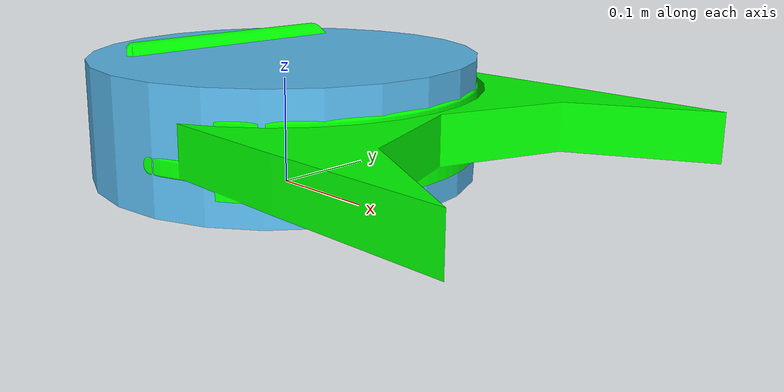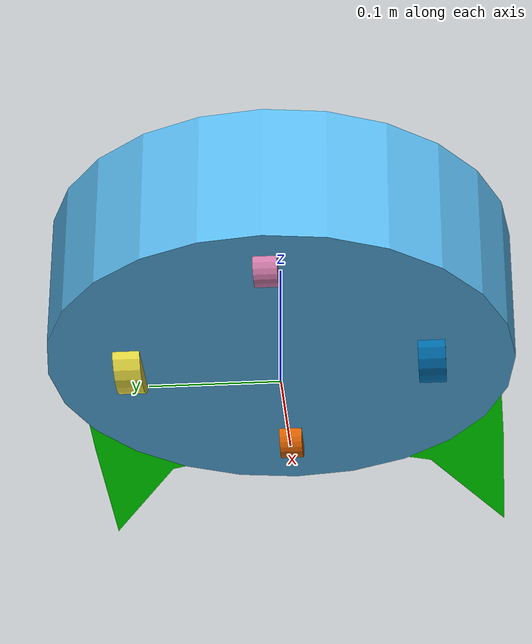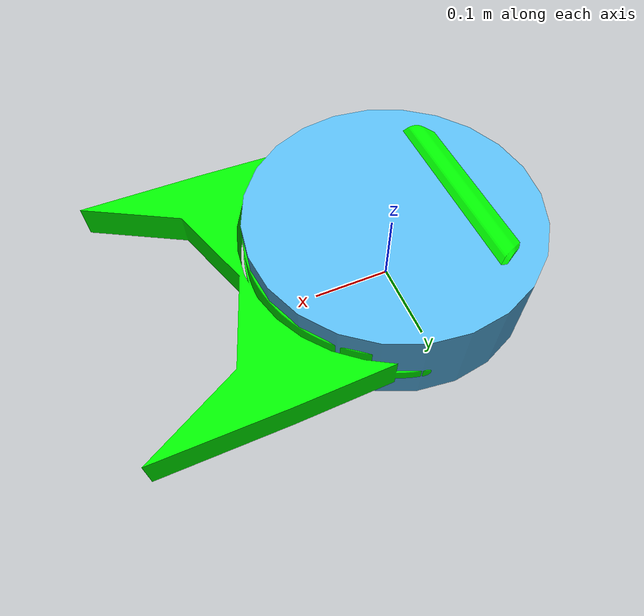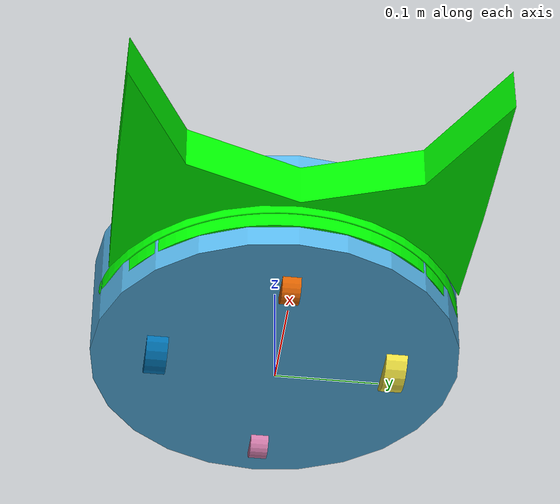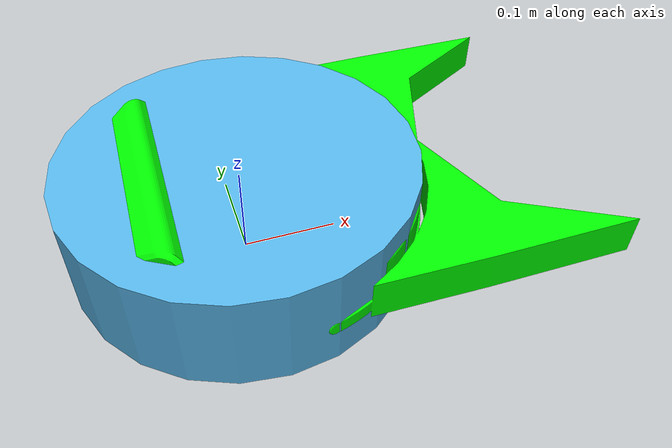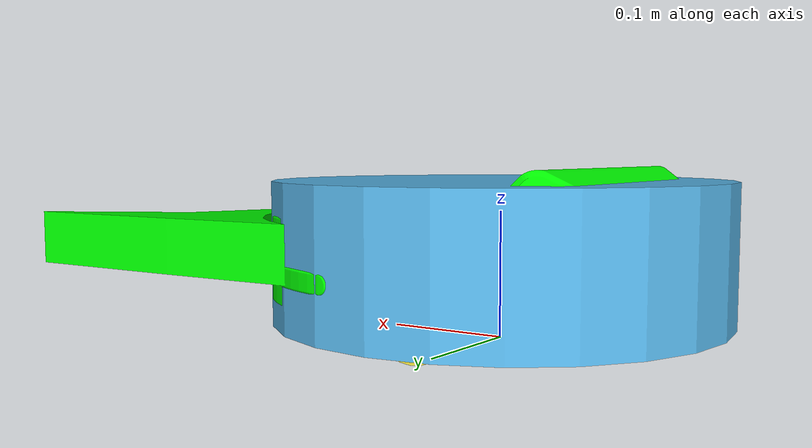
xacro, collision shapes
<?xml version="1.0"?>
<robot name="kobuki_standalone"
       xmlns:sensor="http://playerstage.sourceforge.net/gazebo/xmlschema/#sensor"
       xmlns:controller="http://playerstage.sourceforge.net/gazebo/xmlschema/#controller"
       xmlns:interface="http://playerstage.sourceforge.net/gazebo/xmlschema/#interface"
       xmlns:xacro="http://ros.org/wiki/xacro">

  <!-- Defines the kobuki component tag. -->
  <xacro:include filename="$(find learning_kobuki_description)/urdf/kobuki.urdf.xacro" />
  <kobuki/>
</robot>

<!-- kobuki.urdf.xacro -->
<robot name="kobuki" xmlns:xacro="http://ros.org/wiki/xacro">
  <xacro:include filename="$(find learning_kobuki_description)/urdf/common_properties.urdf.xacro"/>
  <xacro:include filename="$(find learning_kobuki_description)/urdf/kobuki_gazebo.urdf.xacro"/>

  <!-- Kobuki -->
  <xacro:macro name="kobuki">
    <link name="base_footprint"/>
    <joint name="base_joint" type="fixed">
      <origin xyz="0 0 0.0102" rpy="0 0 0" />
      <parent link="base_footprint"/>
      <child link="base_link" />
    </joint>
    <link name="base_link">
      <visual>
        <geometry>
          <!-- new mesh -->
          <mesh filename="package://learning_kobuki_description/meshes/main_body.dae" />
        </geometry>
        <origin xyz="0.001 0 0.05199" rpy="0 0 0"/>
      </visual>
      <collision>
        <geometry>
          <cylinder length="0.10938" radius="0.178"/>
        </geometry>
        <origin xyz="0.0 0 0.05949" rpy="0 0 0"/>
      </collision>
      <inertial>
        <!-- COM experimentally determined -->
        <origin xyz="0.01 0 0"/>
        <mass value="2.4"/> <!-- 2.4/2.6 kg for small/big battery pack -->
        <inertia ixx="0.019995" ixy="0.0" ixz="0.0"
                 iyy="0.019995" iyz="0.0"
                 izz="0.03675" />
      </inertial>
    </link>

    <joint name="pusher_joint" type="fixed">
      <origin xyz="0 0 0.0102" rpy="0 0 0" />
      <parent link="base_link"/>
      <child link="pusher_link" />
    </joint>
    <link name="pusher_link">
      <visual>
        <geometry>
          <!-- new mesh -->
          <mesh filename="package://learning_kobuki_description/meshes/turtle_pusher.dae" />
        </geometry>
        <origin xyz="0.005 0 0.05199" rpy="0 0 0"/>
        <material name="neon_green">
          <color rgba="0 1 0 1"/>
        </material>
      </visual>
      <collision>
        <geometry>
          <!-- Custom collision mesh -->
          <mesh filename="package://learning_kobuki_description/meshes/turtle_pusher_collision.dae" />
        </geometry>
        <origin xyz="0.005 0 0.05199" rpy="0 0 0"/>
      </collision>
      <inertial>
        <!-- COM experimentally determined -->
        <origin xyz="0.015 0 0.05199"/>
        <mass value="0.0"/> <!-- 2.4/2.6 kg for small/big battery pack -->
        <inertia ixx="0.0" ixy="0.0" ixz="0.0"
                 iyy="0.0" iyz="0.0"
                 izz="0.0" />
      </inertial>
    </link>

    <joint name="wheel_left_joint" type="continuous">
      <parent link="base_link"/>
      <child link="wheel_left_link"/>
      <origin xyz="0.00 ${0.23/2} 0.0250" rpy="${-M_PI/2} 0 0"/>
      <axis xyz="0 0 1"/>
    </joint>
    <link name="wheel_left_link">
      <visual>
        <geometry>
          <mesh filename="package://learning_kobuki_description/meshes/wheel.dae"/>
        </geometry>
        <origin xyz="0 0 0" rpy="0 0 0"/>
      </visual>
      <collision>
        <geometry>
          <cylinder length="0.0206" radius="0.0352"/>
        </geometry>
        <origin rpy="0 0 0" xyz="0 0 0"/>
      </collision>
      <inertial>
        <mass value="0.01" />
        <origin xyz="0 0 0" />
        <inertia ixx="0.001" ixy="0.0" ixz="0.0"
                 iyy="0.001" iyz="0.0"
                 izz="0.001" />
      </inertial>
    </link>

    <joint name="wheel_right_joint" type="continuous">
      <parent link="base_link"/>
      <child link="wheel_right_link"/>
      <origin xyz="0.00 -${0.23/2} 0.0250" rpy="${-M_PI/2} 0 0"/>
      <axis xyz="0 0 1"/>
    </joint>
    <link name="wheel_right_link">
      <visual>
        <geometry>
          <mesh filename="package://learning_kobuki_description/meshes/wheel.dae"/>
        </geometry>
        <origin xyz="0 0 0" rpy="0 0 0"/>
      </visual>
      <collision>
        <geometry>
          <cylinder length="0.0206" radius="0.0350"/>
        </geometry>
        <origin rpy="0 0 0" xyz="0 0 0"/>
      </collision>
      <inertial>
        <mass value="0.01" />
        <origin xyz="0 0 0" />
        <inertia ixx="0.001" ixy="0.0" ixz="0.0"
                 iyy="0.001" iyz="0.0"
                 izz="0.001" />
      </inertial>
    </link>

    <joint name="caster_front_joint" type="fixed">
      <parent link="base_link"/>
      <child link="caster_front_link"/>
      <origin xyz="0.115 0.0 0.007" rpy="${-M_PI/2} 0 0"/>
    </joint>
    <link name="caster_front_link">
      <collision>
        <geometry>
          <cylinder length="0.0176" radius="0.017"/>
        </geometry>
        <origin rpy="0 0 0" xyz="0 0 0"/>
      </collision>
      <inertial>
        <mass value="0.01" />
        <origin xyz="0 0 0" />
        <inertia ixx="0.001" ixy="0.0" ixz="0.0"
                 iyy="0.001" iyz="0.0"
                 izz="0.001" />
      </inertial>
    </link>

    <joint name="caster_back_joint" type="fixed">
      <parent link="base_link"/>
      <child link="caster_back_link"/>
      <origin xyz="-0.135 0.0 0.009" rpy="${-M_PI/2} 0 0"/>
    </joint>
    <link name="caster_back_link">
      <collision>
        <geometry>
          <cylinder length="0.0176" radius="0.017"/>
        </geometry>
        <origin rpy="0 0 0" xyz="0 0 0"/>
      </collision>
      <inertial>
        <mass value="0.01" />
        <origin xyz="0 0 0" />
        <inertia ixx="0.001" ixy="0.0" ixz="0.0"
                 iyy="0.001" iyz="0.0"
                 izz="0.001" />
      </inertial>
    </link>

    <!-- Kobuki's sensors -->
    <joint name="gyro_joint" type="fixed">
      <axis xyz="0 1 0"/>
      <origin xyz="0.056 0.062 0.0202" rpy="0 0 0"/>
      <parent link="base_link"/>
      <child link="gyro_link"/>
    </joint>
    <link name="gyro_link">
      <inertial>
        <mass value="0.001"/>
        <origin xyz="0 0 0" rpy="0 0 0"/>
        <inertia ixx="0.0001" ixy="0" ixz="0"
                 iyy="0.000001" iyz="0"
                 izz="0.0001"/>
      </inertial>
    </link>

    <joint name="cliff_sensor_left_joint" type="fixed">
      <origin xyz="0.08734 0.13601 0.0214" rpy="0 ${M_PI/2} 0" />
      <parent link="base_link"/>
      <child link="cliff_sensor_left_link" />
    </joint>
    <link name="cliff_sensor_left_link">
      <inertial>
        <mass value="0.0001" />
        <origin xyz="0 0 0" />
        <inertia ixx="0.0001" ixy="0.0" ixz="0.0"
                 iyy="0.0001" iyz="0.0"
                 izz="0.0001" />
      </inertial>
    </link>

    <joint name="cliff_sensor_right_joint" type="fixed">
      <origin xyz="0.085 -0.13601 0.0214" rpy="0 ${M_PI/2} 0" />
      <parent link="base_link"/>
      <child link="cliff_sensor_right_link" />
    </joint>
    <link name="cliff_sensor_right_link">
      <inertial>
        <mass value="0.0001" />
        <origin xyz="0 0 0" />
        <inertia ixx="0.0001" ixy="0.0" ixz="0.0"
                 iyy="0.0001" iyz="0.0"
                 izz="0.0001" />
      </inertial>
    </link>

    <joint name="cliff_sensor_front_joint" type="fixed">
      <origin xyz="0.156 0.00 0.0214" rpy="0 ${M_PI/2} 0" />
      <parent link="base_link"/>
      <child link="cliff_sensor_front_link" />
    </joint>
    <link name="cliff_sensor_front_link">
      <inertial>
        <mass value="0.0001" />
        <origin xyz="0 0 0" />
        <inertia ixx="0.0001" ixy="0.0" ixz="0.0"
                 iyy="0.0001" iyz="0.0"
                 izz="0.0001" />
      </inertial>
    </link>

    <!-- Kobuki Gazebo simulation details -->
    <kobuki_sim/>

  </xacro:macro>
</robot>

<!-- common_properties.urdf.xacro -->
<!--
  Various useful properties such as constants and materials
 -->
<robot name="xacro_properties" xmlns:xacro="http://ros.org/wiki/xacro">
  <xacro:property name="M_PI" value="3.1415926535897931" />
  <xacro:property name="material_white">
    <material name="white">
      <color rgba="1 1 1 1"/>
    </material>
  </xacro:property>
  <xacro:property name="material_grey">
    <material name="grey">
      <color rgba="0.5 0.5 0.5 1"/>
    </material>
  </xacro:property>
  <xacro:property name="material_light_grey">
    <material name="light_grey">
      <color rgba="0.6 0.6 0.6 1"/>
    </material>
  </xacro:property>
  <xacro:property name="material_dark_grey">
    <material name="dark_grey">
      <color rgba="0.3 0.3 0.3 1"/>
    </material>
  </xacro:property>
  <xacro:property name="material_black">
    <material name="black">
      <color rgba="0.1 0.1 0.1 1"/>
    </material>
  </xacro:property>
  <xacro:property name="material_red">
    <material name="red">
      <color rgba="1 0 0 1"/>
    </material>
  </xacro:property>
  <xacro:property name="material_green">
    <material name="green">
      <color rgba="0.0 0.8 0.0 1"/>
    </material>
  </xacro:property>
  <xacro:property name="material_neon_greeen">
    <material name="neon_green">
      <color rgba="0 1 0 1"/>
    </material>
  </xacro:property>
  <xacro:property name="material_blue">
    <material name="blue">
      <color rgba="0.0 0.0 1.0 1"/>
    </material>
  </xacro:property>
  <xacro:property name="material_grey_blue">
    <material name="grey_blue">
      <color rgba="0.4 0.4 1.0 1"/>
    </material>
  </xacro:property>
  <xacro:property name="material_orange">
    <material name="orange">
      <color rgba="1.0 0.7 0.0 1"/>
    </material>
  </xacro:property>
</robot>
